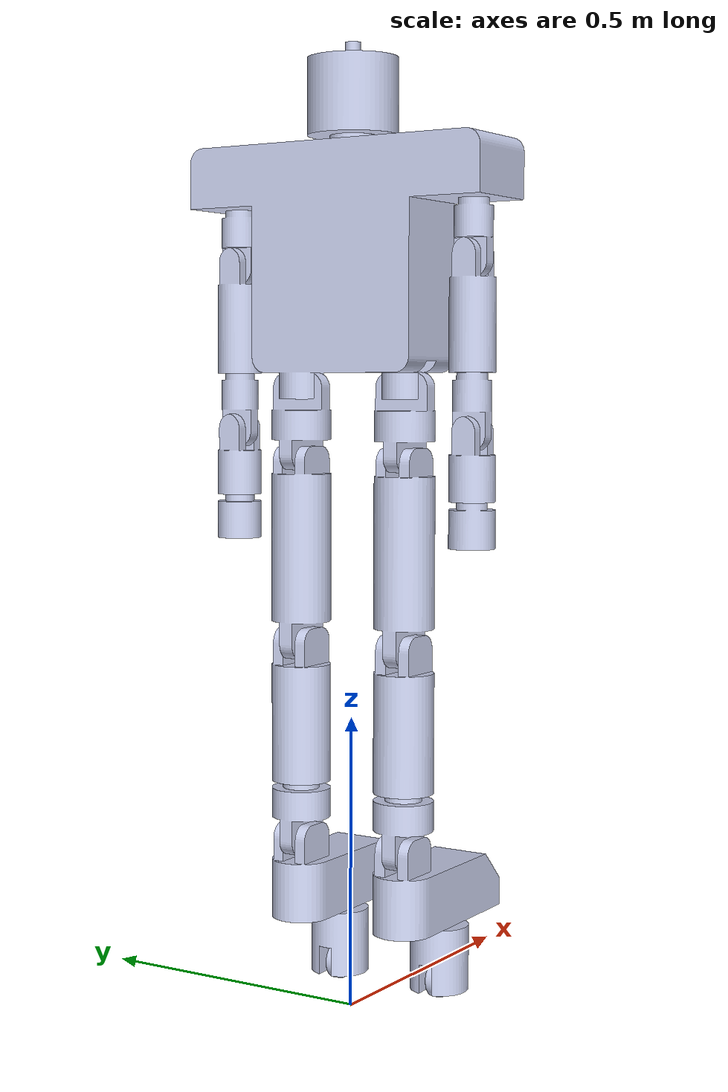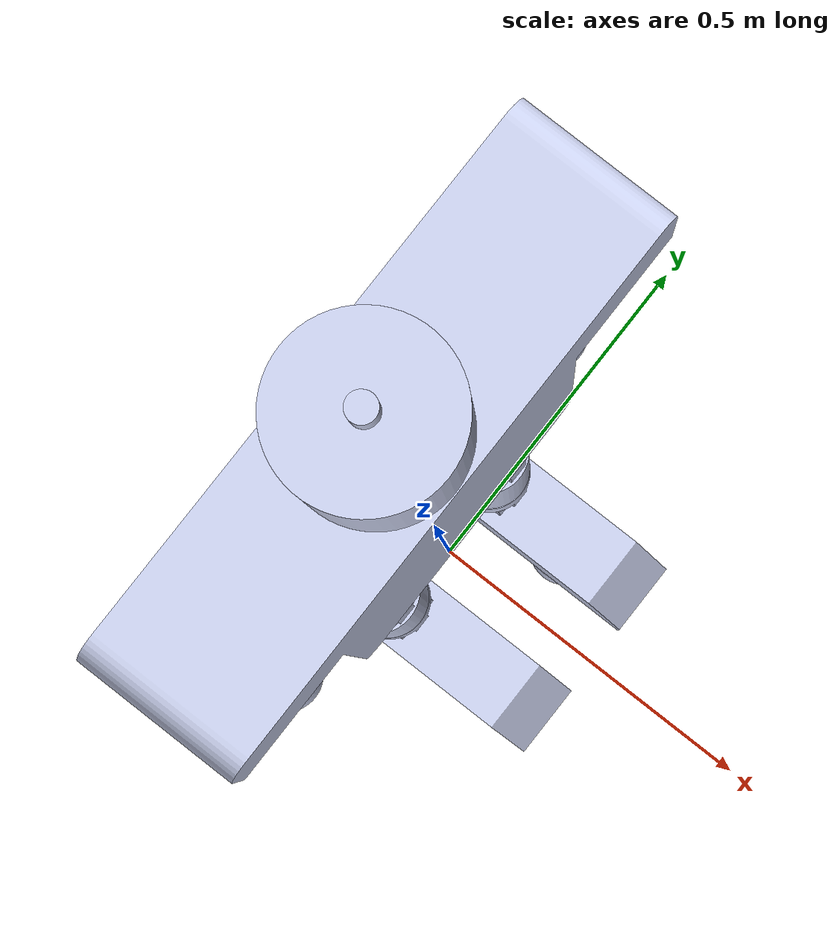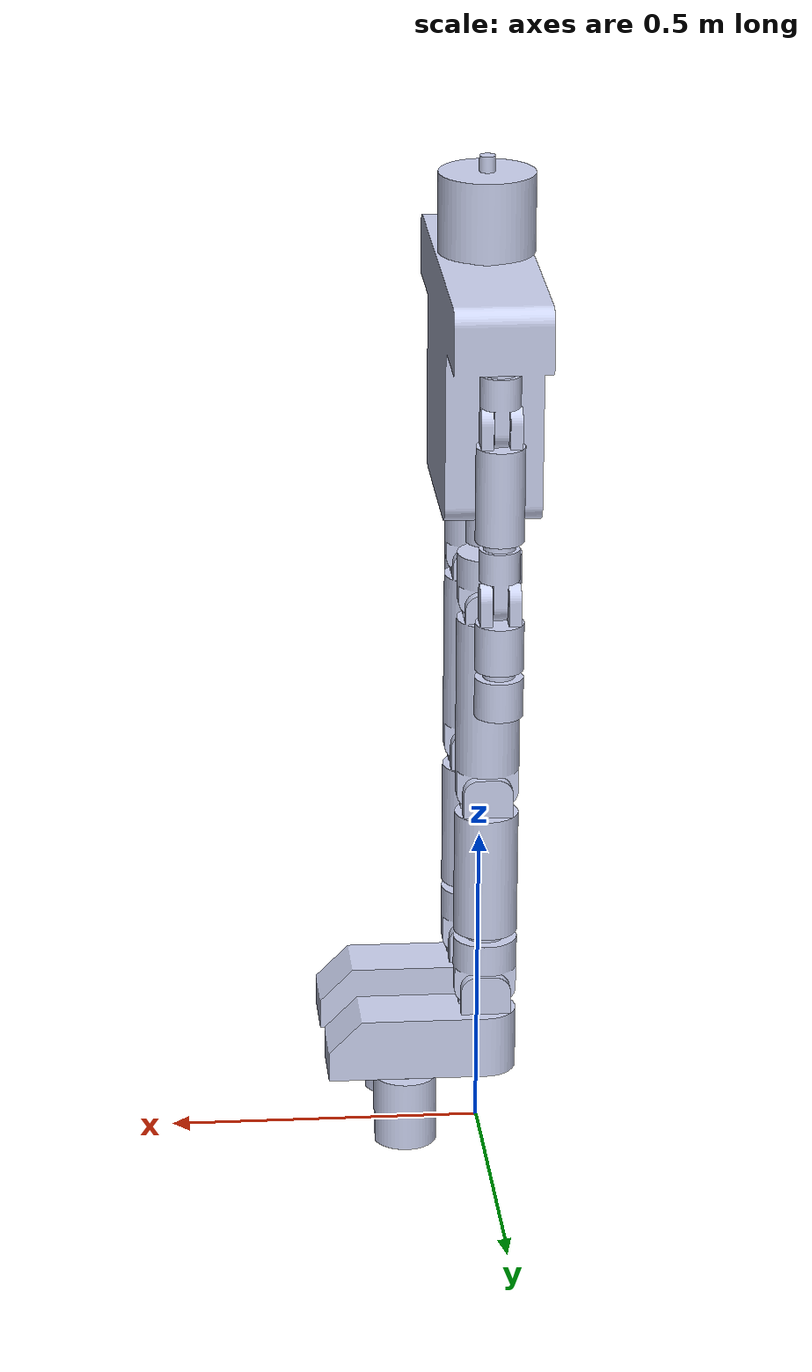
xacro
<?xml version="1.0" ?>

<robot
  name="humanoid" xmlns:xacro="http://ros.org/wiki/xacro">

  <!-- Dummy Link -->
  <link name="dummy_link"></link>

  <link
    name="base_link">
    <inertial>
      <origin
        xyz="3.8031E-15 1.512E-16 1.2984"
        rpy="0 0 0" />
      <mass
        value="21.211" />
      <inertia
        ixx="0.59044"
        ixy="9.5223E-16"
        ixz="-8.1947E-16"
        iyy="0.32027"
        iyz="-2.4854E-17"
        izz="0.35359" />
    </inertial>
    <visual>
      <origin
        xyz="0 0 0"
        rpy="0 0 0" />
      <geometry>
        <mesh
          filename="package://humanoid/meshes/base_link.STL" />
      </geometry>
      <material
        name="">
        <color
          rgba="0.79216 0.81961 0.93333 1" />
      </material>
    </visual>
    <collision>
      <origin
        xyz="0 0 0"
        rpy="0 0 0" />
      <geometry>
        <mesh
          filename="package://humanoid/meshes/base_link.STL" />
      </geometry>
    </collision>
  </link>

  <!-- Dummy Joint -->
  <joint name="dummy_joint" type="fixed">
    <origin rpy="0 0 0" xyz="0 0 0" />
    <parent link="dummy_link"/>
    <child link="base_link"/>
  </joint>

  <link
    name="hd_link">
    <inertial>
      <origin
        xyz="6.163E-33 -2.6872E-18 -0.010583"
        rpy="0 0 0" />
      <mass
        value="2.6062" />
      <inertia
        ixx="0.0090144"
        ixy="-5.6248E-36"
        ixz="1.8808E-34"
        iyy="0.0090144"
        iyz="-7.0394E-20"
        izz="0.006936" />
    </inertial>
    <visual>
      <origin
        xyz="0 0 0"
        rpy="0 0 0" />
      <geometry>
        <mesh
          filename="package://humanoid/meshes/hd_link.STL" />
      </geometry>
      <material
        name="">
        <color
          rgba="0.79216 0.81961 0.93333 1" />
      </material>
    </visual>
    <collision>
      <origin
        xyz="0 0 0"
        rpy="0 0 0" />
      <geometry>
        <mesh
          filename="package://humanoid/meshes/hd_link.STL" />
      </geometry>
    </collision>
  </link>
  <joint
    name="hd_joint"
    type="revolute">
    <origin
      xyz="0 0 1.5433"
      rpy="0 0 1.5708" />
    <parent
      link="base_link" />
    <child
      link="hd_link" />
    <axis
      xyz="0 0 1" />
    <limit
      lower="-1.5708"
      upper="1.5708"
      effort="0"
      velocity="0" />
  </joint>
  <link
    name="ldr_link">
    <inertial>
      <origin
        xyz="-6.163E-33 -5.8746E-19 0"
        rpy="0 0 0" />
      <mass
        value="0.01287" />
      <inertia
        ixx="1.2109E-06"
        ixy="3.729E-41"
        ixz="-3.8729E-39"
        iyy="1.2109E-06"
        iyz="-5.9247E-37"
        izz="1.0379E-06" />
    </inertial>
    <visual>
      <origin
        xyz="0 0 0"
        rpy="0 0 0" />
      <geometry>
        <mesh
          filename="package://humanoid/meshes/ldr_link.STL" />
      </geometry>
      <material
        name="">
        <color
          rgba="0.79216 0.81961 0.93333 1" />
      </material>
    </visual>
    <collision>
      <origin
        xyz="0 0 0"
        rpy="0 0 0" />
      <geometry>
        <mesh
          filename="package://humanoid/meshes/ldr_link.STL" />
      </geometry>
    </collision>
  </link>
  <joint
    name="ldr_joint"
    type="fixed">
    <origin
      xyz="0 0 0.0762"
      rpy="0 0 0" />
    <parent
      link="hd_link" />
    <child
      link="ldr_link" />
    <axis
      xyz="0 0 0" />
  </joint>
  <link
    name="r_shldr_1_link">
    <inertial>
      <origin
        xyz="-7.718E-06 -1.114E-18 -0.027669"
        rpy="0 0 0" />
      <mass
        value="0.35613" />
      <inertia
        ixx="0.00074567"
        ixy="-2.0209E-21"
        ixz="-1.8635E-07"
        iyy="0.00076353"
        iyz="-8.8871E-21"
        izz="0.00014594" />
    </inertial>
    <visual>
      <origin
        xyz="0 0 0"
        rpy="0 0 0" />
      <geometry>
        <mesh
          filename="package://humanoid/meshes/r_shldr_1_link.STL" />
      </geometry>
      <material
        name="">
        <color
          rgba="0.79216 0.81961 0.93333 1" />
      </material>
    </visual>
    <collision>
      <origin
        xyz="0 0 0"
        rpy="0 0 0" />
      <geometry>
        <mesh
          filename="package://humanoid/meshes/r_shldr_1_link.STL" />
      </geometry>
    </collision>
  </link>
  <joint
    name="r_shldr_1_joint"
    type="revolute">
    <origin
      xyz="0 -0.2286 1.3655"
      rpy="0 0 1.5708" />
    <parent
      link="base_link" />
    <child
      link="r_shldr_1_link" />
    <axis
      xyz="0 0 1" />
    <limit
      lower="-1.5708"
      upper="1.5708"
      effort="0"
      velocity="0" />
  </joint>
  <link
    name="r_shldr_2_link">
    <inertial>
      <origin
        xyz="1.9512E-14 -0.084667 -1.4962E-17"
        rpy="0 0 0" />
      <mass
        value="0.6963" />
      <inertia
        ixx="0.0021474"
        ixy="-7.5583E-20"
        ixz="4.6213E-21"
        iyy="0.00053267"
        iyz="-3.5916E-21"
        izz="0.0021116" />
    </inertial>
    <visual>
      <origin
        xyz="0 0 0"
        rpy="0 0 0" />
      <geometry>
        <mesh
          filename="package://humanoid/meshes/r_shldr_2_link.STL" />
      </geometry>
      <material
        name="">
        <color
          rgba="0.79216 0.81961 0.93333 1" />
      </material>
    </visual>
    <collision>
      <origin
        xyz="0 0 0"
        rpy="0 0 0" />
      <geometry>
        <mesh
          filename="package://humanoid/meshes/r_shldr_2_link.STL" />
      </geometry>
    </collision>
  </link>
  <joint
    name="r_shldr_2_joint"
    type="revolute">
    <origin
      xyz="0.00024399 0.0015837 -0.095467"
      rpy="1.5708 0 0" />
    <parent
      link="r_shldr_1_link" />
    <child
      link="r_shldr_2_link" />
    <axis
      xyz="0 0 1" />
    <limit
      lower="-1.5708"
      upper="1.5708"
      effort="0"
      velocity="0" />
  </joint>
  <link
    name="r_elb_1_link">
    <inertial>
      <origin
        xyz="7.718E-06 3.1442E-17 -0.027669"
        rpy="0 0 0" />
      <mass
        value="0.35613" />
      <inertia
        ixx="0.00074567"
        ixy="5.3388E-21"
        ixz="1.8635E-07"
        iyy="0.00076353"
        iyz="-2.4356E-20"
        izz="0.00014594" />
    </inertial>
    <visual>
      <origin
        xyz="0 0 0"
        rpy="0 0 0" />
      <geometry>
        <mesh
          filename="package://humanoid/meshes/r_elb_1_link.STL" />
      </geometry>
      <material
        name="">
        <color
          rgba="0.79216 0.81961 0.93333 1" />
      </material>
    </visual>
    <collision>
      <origin
        xyz="0 0 0"
        rpy="0 0 0" />
      <geometry>
        <mesh
          filename="package://humanoid/meshes/r_elb_1_link.STL" />
      </geometry>
    </collision>
  </link>
  <joint
    name="r_elb_1_joint"
    type="revolute">
    <origin
      xyz="0 -0.18415 0"
      rpy="-1.5708 0 0" />
    <parent
      link="r_shldr_2_link" />
    <child
      link="r_elb_1_link" />
    <axis
      xyz="0 0 1" />
    <limit
      lower="-1.5708"
      upper="1.5708"
      effort="0"
      velocity="0" />
  </joint>
  <link
    name="r_elb_2_link">
    <inertial>
      <origin
        xyz="5.5511E-17 -0.052122 3.8005E-18"
        rpy="0 0 0" />
      <mass
        value="0.3488" />
      <inertia
        ixx="0.00059507"
        ixy="4.3132E-20"
        ixz="-4.1359E-22"
        iyy="0.00028045"
        iyz="-1.3932E-20"
        izz="0.00055932" />
    </inertial>
    <visual>
      <origin
        xyz="0 0 0"
        rpy="0 0 0" />
      <geometry>
        <mesh
          filename="package://humanoid/meshes/r_elb_2_link.STL" />
      </geometry>
      <material
        name="">
        <color
          rgba="0.79216 0.81961 0.93333 1" />
      </material>
    </visual>
    <collision>
      <origin
        xyz="0 0 0"
        rpy="0 0 0" />
      <geometry>
        <mesh
          filename="package://humanoid/meshes/r_elb_2_link.STL" />
      </geometry>
    </collision>
  </link>
  <joint
    name="r_elb_2_joint"
    type="revolute">
    <origin
      xyz="-0.00024399 -0.0015837 -0.095467"
      rpy="1.5708 -1.5708 0" />
    <parent
      link="r_elb_1_link" />
    <child
      link="r_elb_2_link" />
    <axis
      xyz="0 0 1" />
    <limit
      lower="-1.5708"
      upper="-1.5708"
      effort="0"
      velocity="0" />
  </joint>
  <link
    name="r_wst_link">
    <inertial>
      <origin
        xyz="-5.5511E-17 -2.1696E-19 0.051891"
        rpy="0 0 0" />
      <mass
        value="0.41185" />
      <inertia
        ixx="0.00061222"
        ixy="-5.6874E-21"
        ixz="5.8139E-20"
        iyy="0.00061222"
        iyz="-3.9234E-20"
        izz="0.00024492" />
    </inertial>
    <visual>
      <origin
        xyz="0 0 0"
        rpy="0 0 0" />
      <geometry>
        <mesh
          filename="package://humanoid/meshes/r_wst_link.STL" />
      </geometry>
      <material
        name="">
        <color
          rgba="0.79216 0.81961 0.93333 1" />
      </material>
    </visual>
    <collision>
      <origin
        xyz="0 0 0"
        rpy="0 0 0" />
      <geometry>
        <mesh
          filename="package://humanoid/meshes/r_wst_link.STL" />
      </geometry>
    </collision>
  </link>
  <joint
    name="r_wst_joint"
    type="revolute">
    <origin
      xyz="0 -0.1905 0"
      rpy="-1.5708 0 0" />
    <parent
      link="r_elb_2_link" />
    <child
      link="r_wst_link" />
    <axis
      xyz="0 0 1" />
    <limit
      lower="-3.1416"
      upper="3.1416"
      effort="0"
      velocity="0" />
  </joint>
  <link
    name="l_shldr_1_link">
    <inertial>
      <origin
        xyz="-7.718E-06 -1.1543E-18 -0.027669"
        rpy="0 0 0" />
      <mass
        value="0.35613" />
      <inertia
        ixx="0.00074567"
        ixy="4.8799E-23"
        ixz="-1.8635E-07"
        iyy="0.00076353"
        iyz="-1.1038E-20"
        izz="0.00014594" />
    </inertial>
    <visual>
      <origin
        xyz="0 0 0"
        rpy="0 0 0" />
      <geometry>
        <mesh
          filename="package://humanoid/meshes/l_shldr_1_link.STL" />
      </geometry>
      <material
        name="">
        <color
          rgba="0.79216 0.81961 0.93333 1" />
      </material>
    </visual>
    <collision>
      <origin
        xyz="0 0 0"
        rpy="0 0 0" />
      <geometry>
        <mesh
          filename="package://humanoid/meshes/l_shldr_1_link.STL" />
      </geometry>
    </collision>
  </link>
  <joint
    name="l_shldr_1_joint"
    type="revolute">
    <origin
      xyz="0 0.2286 1.3655"
      rpy="0 0 1.5708" />
    <parent
      link="base_link" />
    <child
      link="l_shldr_1_link" />
    <axis
      xyz="0 0 1" />
    <limit
      lower="-1.5708"
      upper="1.5708"
      effort="0"
      velocity="0" />
  </joint>
  <link
    name="l_shldr_2_link">
    <inertial>
      <origin
        xyz="1.9151E-14 -0.084667 1.6263E-17"
        rpy="0 0 0" />
      <mass
        value="0.6963" />
      <inertia
        ixx="0.0021474"
        ixy="7.1655E-19"
        ixz="8.0873E-21"
        iyy="0.00053267"
        iyz="-1.4351E-20"
        izz="0.0021116" />
    </inertial>
    <visual>
      <origin
        xyz="0 0 0"
        rpy="0 0 0" />
      <geometry>
        <mesh
          filename="package://humanoid/meshes/l_shldr_2_link.STL" />
      </geometry>
      <material
        name="">
        <color
          rgba="0.79216 0.81961 0.93333 1" />
      </material>
    </visual>
    <collision>
      <origin
        xyz="0 0 0"
        rpy="0 0 0" />
      <geometry>
        <mesh
          filename="package://humanoid/meshes/l_shldr_2_link.STL" />
      </geometry>
    </collision>
  </link>
  <joint
    name="l_shldr_2_joint"
    type="revolute">
    <origin
      xyz="0.00024399 0.0015837 -0.095467"
      rpy="1.5708 0 0" />
    <parent
      link="l_shldr_1_link" />
    <child
      link="l_shldr_2_link" />
    <axis
      xyz="0 0 1" />
    <limit
      lower="-1.5708"
      upper="1.5708"
      effort="0"
      velocity="0" />
  </joint>
  <link
    name="l_elb_1_link">
    <inertial>
      <origin
        xyz="-7.718E-06 -1.6697E-17 -0.027669"
        rpy="0 0 0" />
      <mass
        value="0.35613" />
      <inertia
        ixx="0.00074567"
        ixy="-6.7096E-22"
        ixz="-1.8635E-07"
        iyy="0.00076353"
        iyz="-7.5275E-21"
        izz="0.00014594" />
    </inertial>
    <visual>
      <origin
        xyz="0 0 0"
        rpy="0 0 0" />
      <geometry>
        <mesh
          filename="package://humanoid/meshes/l_elb_1_link.STL" />
      </geometry>
      <material
        name="">
        <color
          rgba="0.79216 0.81961 0.93333 1" />
      </material>
    </visual>
    <collision>
      <origin
        xyz="0 0 0"
        rpy="0 0 0" />
      <geometry>
        <mesh
          filename="package://humanoid/meshes/l_elb_1_link.STL" />
      </geometry>
    </collision>
  </link>
  <joint
    name="l_elb_1_joint"
    type="revolute">
    <origin
      xyz="0 -0.18415 0"
      rpy="-1.5708 0 0" />
    <parent
      link="l_shldr_2_link" />
    <child
      link="l_elb_1_link" />
    <axis
      xyz="0 0 1" />
    <limit
      lower="-1.5708"
      upper="1.5708"
      effort="0"
      velocity="0" />
  </joint>
  <link
    name="l_elb_2_link">
    <inertial>
      <origin
        xyz="-2.7756E-17 -0.052122 0"
        rpy="0 0 0" />
      <mass
        value="0.3488" />
      <inertia
        ixx="0.00059507"
        ixy="-5.2112E-20"
        ixz="-1.6544E-21"
        iyy="0.00028045"
        iyz="3.0486E-21"
        izz="0.00055932" />
    </inertial>
    <visual>
      <origin
        xyz="0 0 0"
        rpy="0 0 0" />
      <geometry>
        <mesh
          filename="package://humanoid/meshes/l_elb_2_link.STL" />
      </geometry>
      <material
        name="">
        <color
          rgba="0.79216 0.81961 0.93333 1" />
      </material>
    </visual>
    <collision>
      <origin
        xyz="0 0 0"
        rpy="0 0 0" />
      <geometry>
        <mesh
          filename="package://humanoid/meshes/l_elb_2_link.STL" />
      </geometry>
    </collision>
  </link>
  <joint
    name="l_elb_2_joint"
    type="revolute">
    <origin
      xyz="0.00024399 0.0015837 -0.095467"
      rpy="1.5708 0 0" />
    <parent
      link="l_elb_1_link" />
    <child
      link="l_elb_2_link" />
    <axis
      xyz="0 0 1" />
    <limit
      lower="-1.5708"
      upper="1.5708"
      effort="0"
      velocity="0" />
  </joint>
  <link
    name="l_wst_link">
    <inertial>
      <origin
        xyz="5.5511E-17 8.6736E-19 0.051891"
        rpy="0 0 0" />
      <mass
        value="0.41185" />
      <inertia
        ixx="0.00061222"
        ixy="-3.8705E-21"
        ixz="5.4194E-20"
        iyy="0.00061222"
        iyz="3.9778E-20"
        izz="0.00024492" />
    </inertial>
    <visual>
      <origin
        xyz="0 0 0"
        rpy="0 0 0" />
      <geometry>
        <mesh
          filename="package://humanoid/meshes/l_wst_link.STL" />
      </geometry>
      <material
        name="">
        <color
          rgba="0.79216 0.81961 0.93333 1" />
      </material>
    </visual>
    <collision>
      <origin
        xyz="0 0 0"
        rpy="0 0 0" />
      <geometry>
        <mesh
          filename="package://humanoid/meshes/l_wst_link.STL" />
      </geometry>
    </collision>
  </link>
  <joint
    name="l_wst_joint"
    type="revolute">
    <origin
      xyz="0 -0.1905 0"
      rpy="-1.5708 0 0" />
    <parent
      link="l_elb_2_link" />
    <child
      link="l_wst_link" />
    <axis
      xyz="0 0 1" />
    <limit
      lower="-3.1416"
      upper="3.1416"
      effort="0"
      velocity="0" />
  </joint>
  <link
    name="r_hp_1_link">
    <inertial>
      <origin
        xyz="0.00024877 -0.053648 0.000127"
        rpy="0 0 0" />
      <mass
        value="0.65765" />
      <inertia
        ixx="0.0012068"
        ixy="-1.6847E-07"
        ixz="-6.4984E-21"
        iyy="0.00074697"
        iyz="-3.7908E-20"
        izz="0.0012307" />
    </inertial>
    <visual>
      <origin
        xyz="0 0 0"
        rpy="0 0 0" />
      <geometry>
        <mesh
          filename="package://humanoid/meshes/r_hp_1_link.STL" />
      </geometry>
      <material
        name="">
        <color
          rgba="0.79216 0.81961 0.93333 1" />
      </material>
    </visual>
    <collision>
      <origin
        xyz="0 0 0"
        rpy="0 0 0" />
      <geometry>
        <mesh
          filename="package://humanoid/meshes/r_hp_1_link.STL" />
      </geometry>
    </collision>
  </link>
  <joint
    name="r_hp_1_joint"
    type="revolute">
    <origin
      xyz="0 -0.1022 1.0549"
      rpy="1.5708 0 1.5708" />
    <parent
      link="base_link" />
    <child
      link="r_hp_1_link" />
    <axis
      xyz="0 0 1" />
    <limit
      lower="-1.5708"
      upper="1.5708"
      effort="0"
      velocity="0" />
  </joint>
  <link
    name="r_hp_2_link">
    <inertial>
      <origin
        xyz="1.0766E-16 -0.16129 -2.2204E-16"
        rpy="0 0 0" />
      <mass
        value="2.3091" />
      <inertia
        ixx="0.018755"
        ixy="2.2914E-19"
        ixz="-6.1207E-21"
        iyy="0.0028914"
        iyz="2.5905E-18"
        izz="0.018839" />
    </inertial>
    <visual>
      <origin
        xyz="0 0 0"
        rpy="0 0 0" />
      <geometry>
        <mesh
          filename="package://humanoid/meshes/r_hp_2_link.STL" />
      </geometry>
      <material
        name="">
        <color
          rgba="0.79216 0.81961 0.93333 1" />
      </material>
    </visual>
    <collision>
      <origin
        xyz="0 0 0"
        rpy="0 0 0" />
      <geometry>
        <mesh
          filename="package://humanoid/meshes/r_hp_2_link.STL" />
      </geometry>
    </collision>
  </link>
  <joint
    name="r_hp_2_joint"
    type="revolute">
    <origin
      xyz="0.00024399 -0.10817 0.000127"
      rpy="0 1.5708 0" />
    <parent
      link="r_hp_1_link" />
    <child
      link="r_hp_2_link" />
    <axis
      xyz="0 0 1" />
    <limit
      lower="-1.5708"
      upper="1.5708"
      effort="0"
      velocity="0" />
  </joint>
  <link
    name="r_kn_link">
    <inertial>
      <origin
        xyz="-4.8765E-16 -0.12013 -1.1616E-14"
        rpy="0 0 0" />
      <mass
        value="1.6405" />
      <inertia
        ixx="0.0082386"
        ixy="-3.646E-20"
        ixz="6.8971E-21"
        iyy="0.0022087"
        iyz="4.4528E-20"
        izz="0.0082315" />
    </inertial>
    <visual>
      <origin
        xyz="0 0 0"
        rpy="0 0 0" />
      <geometry>
        <mesh
          filename="package://humanoid/meshes/r_kn_link.STL" />
      </geometry>
      <material
        name="">
        <color
          rgba="0.79216 0.81961 0.93333 1" />
      </material>
    </visual>
    <collision>
      <origin
        xyz="0 0 0"
        rpy="0 0 0" />
      <geometry>
        <mesh
          filename="package://humanoid/meshes/r_kn_link.STL" />
      </geometry>
    </collision>
  </link>
  <joint
    name="r_kn_joint"
    type="revolute">
    <origin
      xyz="0 -0.31824 0"
      rpy="0 0 0" />
    <parent
      link="r_hp_2_link" />
    <child
      link="r_kn_link" />
    <axis
      xyz="0 0 1" />
    <limit
      lower="0"
      upper="1.5708"
      effort="0"
      velocity="0" />
  </joint>
  <link
    name="r_ank_1_link">
    <inertial>
      <origin
        xyz="0 -3.9653E-06 -0.028529"
        rpy="0 0 0" />
      <mass
        value="0.79193" />
      <inertia
        ixx="0.0020261"
        ixy="1.4945E-20"
        ixz="-1.3416E-19"
        iyy="0.0019196"
        iyz="-2.102E-07"
        izz="0.00077447" />
    </inertial>
    <visual>
      <origin
        xyz="0 0 0"
        rpy="0 0 0" />
      <geometry>
        <mesh
          filename="package://humanoid/meshes/r_ank_1_link.STL" />
      </geometry>
      <material
        name="">
        <color
          rgba="0.79216 0.81961 0.93333 1" />
      </material>
    </visual>
    <collision>
      <origin
        xyz="0 0 0"
        rpy="0 0 0" />
      <geometry>
        <mesh
          filename="package://humanoid/meshes/r_ank_1_link.STL" />
      </geometry>
    </collision>
  </link>
  <joint
    name="r_ank_1_joint"
    type="revolute">
    <origin
      xyz="0 -0.24599 0"
      rpy="1.5708 -1.5708 3.1416" />
    <parent
      link="r_kn_link" />
    <child
      link="r_ank_1_link" />
    <axis
      xyz="0 0 1" />
    <limit
      lower="-1.5708"
      upper="1.5708"
      effort="0"
      velocity="0" />
  </joint>
  <link
    name="r_ank_2_link">
    <inertial>
      <origin
        xyz="-0.091402 -0.087623 -2.7756E-17"
        rpy="0 0 0" />
      <mass
        value="2.8526" />
      <inertia
        ixx="0.0058988"
        ixy="-0.0019208"
        ixz="-1.9762E-18"
        iyy="0.023453"
        iyz="1.9261E-19"
        izz="0.024534" />
    </inertial>
    <visual>
      <origin
        xyz="0 0 0"
        rpy="0 0 0" />
      <geometry>
        <mesh
          filename="package://humanoid/meshes/r_ank_2_link.STL" />
      </geometry>
      <material
        name="">
        <color
          rgba="0.79216 0.81961 0.93333 1" />
      </material>
    </visual>
    <collision>
      <origin
        xyz="0 0 0"
        rpy="0 0 0" />
      <geometry>
        <mesh
          filename="package://humanoid/meshes/r_ank_2_link.STL" />
      </geometry>
    </collision>
  </link>
  <joint
    name="r_ank_2_joint"
    type="revolute">
    <origin
      xyz="0 0.00024399 -0.095467"
      rpy="1.5708 0 1.5708" />
    <parent
      link="r_ank_1_link" />
    <child
      link="r_ank_2_link" />
    <axis
      xyz="0 0 1" />
    <limit
      lower="-0.7854"
      upper="0.7854"
      effort="0"
      velocity="0" />
  </joint>
  <link
    name="r_str_link">
    <inertial>
      <origin
        xyz="0 0 -0.05324"
        rpy="0 0 0" />
      <mass
        value="0.92887" />
      <inertia
        ixx="0.0021692"
        ixy="2.6933E-20"
        ixz="-2.5171E-20"
        iyy="0.0022717"
        iyz="-9.47E-21"
        izz="0.0011212" />
    </inertial>
    <visual>
      <origin
        xyz="0 0 0"
        rpy="0 0 0" />
      <geometry>
        <mesh
          filename="package://humanoid/meshes/r_str_link.STL" />
      </geometry>
      <material
        name="">
        <color
          rgba="0.79216 0.81961 0.93333 1" />
      </material>
    </visual>
    <collision>
      <origin
        xyz="0 0 0"
        rpy="0 0 0" />
      <geometry>
        <mesh
          filename="package://humanoid/meshes/r_str_link.STL" />
      </geometry>
    </collision>
  </link>
  <joint
    name="r_str_joint"
    type="revolute">
    <origin
      xyz="-0.127 -0.14439 0"
      rpy="1.5708 -1.5708 3.1416" />
    <parent
      link="r_ank_2_link" />
    <child
      link="r_str_link" />
    <axis
      xyz="0 0 1" />
    <limit
      lower="-3.1416"
      upper="3.1416"
      effort="0"
      velocity="0" />
  </joint>
  <link
    name="r_wl_link">
    <inertial>
      <origin
        xyz="0 0 -1.3878E-17"
        rpy="0 0 0" />
      <mass
        value="0.064271" />
      <inertia
        ixx="2.1439E-05"
        ixy="-2.5021E-38"
        ixz="1.6141E-22"
        iyy="2.1439E-05"
        iyz="3.8564E-22"
        izz="3.6458E-05" />
    </inertial>
    <visual>
      <origin
        xyz="0 0 0"
        rpy="0 0 0" />
      <geometry>
        <mesh
          filename="package://humanoid/meshes/r_wl_link.STL" />
      </geometry>
      <material
        name="">
        <color
          rgba="0.79216 0.81961 0.93333 1" />
      </material>
    </visual>
    <collision>
      <origin
        xyz="0 0 0"
        rpy="0 0 0" />
      <geometry>
        <mesh
          filename="package://humanoid/meshes/r_wl_link.STL" />
      </geometry>
    </collision>
  </link>
  <joint
    name="r_wl_joint"
    type="revolute">
    <origin
      xyz="0 0 -0.11092"
      rpy="1.5708 0 1.5708" />
    <parent
      link="r_str_link" />
    <child
      link="r_wl_link" />
    <axis
      xyz="0 0 1" />
    <limit
      lower="-3.1416"
      upper="3.1416"
      effort="0"
      velocity="0" />
  </joint>
  <link
    name="l_hp_1_link">
    <inertial>
      <origin
        xyz="0.00024877 -0.053648 0.000127"
        rpy="0 0 0" />
      <mass
        value="0.65765" />
      <inertia
        ixx="0.0012068"
        ixy="-1.6847E-07"
        ixz="3.8204E-21"
        iyy="0.00074697"
        iyz="-2.6622E-19"
        izz="0.0012307" />
    </inertial>
    <visual>
      <origin
        xyz="0 0 0"
        rpy="0 0 0" />
      <geometry>
        <mesh
          filename="package://humanoid/meshes/l_hp_1_link.STL" />
      </geometry>
      <material
        name="">
        <color
          rgba="0.79216 0.81961 0.93333 1" />
      </material>
    </visual>
    <collision>
      <origin
        xyz="0 0 0"
        rpy="0 0 0" />
      <geometry>
        <mesh
          filename="package://humanoid/meshes/l_hp_1_link.STL" />
      </geometry>
    </collision>
  </link>
  <joint
    name="l_hp_1_joint"
    type="revolute">
    <origin
      xyz="0 0.1022 1.0549"
      rpy="1.5708 0 1.5708" />
    <parent
      link="base_link" />
    <child
      link="l_hp_1_link" />
    <axis
      xyz="0 0 1" />
    <limit
      lower="-1.5708"
      upper="1.5708"
      effort="0"
      velocity="0" />
  </joint>
  <link
    name="l_hp_2_link">
    <inertial>
      <origin
        xyz="-1.3553E-17 -0.16129 8.0769E-15"
        rpy="0 0 0" />
      <mass
        value="2.3091" />
      <inertia
        ixx="0.018755"
        ixy="9.5821E-20"
        ixz="-1.5705E-20"
        iyy="0.0028914"
        iyz="-1.1135E-16"
        izz="0.018839" />
    </inertial>
    <visual>
      <origin
        xyz="0 0 0"
        rpy="0 0 0" />
      <geometry>
        <mesh
          filename="package://humanoid/meshes/l_hp_2_link.STL" />
      </geometry>
      <material
        name="">
        <color
          rgba="0.79216 0.81961 0.93333 1" />
      </material>
    </visual>
    <collision>
      <origin
        xyz="0 0 0"
        rpy="0 0 0" />
      <geometry>
        <mesh
          filename="package://humanoid/meshes/l_hp_2_link.STL" />
      </geometry>
    </collision>
  </link>
  <joint
    name="l_hp_2_joint"
    type="revolute">
    <origin
      xyz="0.00024399 -0.10817 0.000127"
      rpy="0 1.5708 0" />
    <parent
      link="l_hp_1_link" />
    <child
      link="l_hp_2_link" />
    <axis
      xyz="0 0 1" />
    <limit
      lower="-1.5708"
      upper="1.5708"
      effort="0"
      velocity="0" />
  </joint>
  <link
    name="l_kn_link">
    <inertial>
      <origin
        xyz="-1.1867E-16 -0.12013 4.1633E-17"
        rpy="0 0 0" />
      <mass
        value="1.6405" />
      <inertia
        ixx="0.0082386"
        ixy="-9.2755E-21"
        ixz="1.8323E-20"
        iyy="0.0022087"
        iyz="4.895E-19"
        izz="0.0082315" />
    </inertial>
    <visual>
      <origin
        xyz="0 0 0"
        rpy="0 0 0" />
      <geometry>
        <mesh
          filename="package://humanoid/meshes/l_kn_link.STL" />
      </geometry>
      <material
        name="">
        <color
          rgba="0.79216 0.81961 0.93333 1" />
      </material>
    </visual>
    <collision>
      <origin
        xyz="0 0 0"
        rpy="0 0 0" />
      <geometry>
        <mesh
          filename="package://humanoid/meshes/l_kn_link.STL" />
      </geometry>
    </collision>
  </link>
  <joint
    name="l_kn_joint"
    type="revolute">
    <origin
      xyz="0 -0.31824 0"
      rpy="0 0 0" />
    <parent
      link="l_hp_2_link" />
    <child
      link="l_kn_link" />
    <axis
      xyz="0 0 1" />
    <limit
      lower="0"
      upper="1.5708"
      effort="0"
      velocity="0" />
  </joint>
  <link
    name="l_ank_1_link">
    <inertial>
      <origin
        xyz="0 3.9653E-06 -0.028529"
        rpy="0 0 0" />
      <mass
        value="0.79193" />
      <inertia
        ixx="0.0020261"
        ixy="2.5897E-21"
        ixz="1.3284E-20"
        iyy="0.0019196"
        iyz="2.102E-07"
        izz="0.00077447" />
    </inertial>
    <visual>
      <origin
        xyz="0 0 0"
        rpy="0 0 0" />
      <geometry>
        <mesh
          filename="package://humanoid/meshes/l_ank_1_link.STL" />
      </geometry>
      <material
        name="">
        <color
          rgba="0.79216 0.81961 0.93333 1" />
      </material>
    </visual>
    <collision>
      <origin
        xyz="0 0 0"
        rpy="0 0 0" />
      <geometry>
        <mesh
          filename="package://humanoid/meshes/l_ank_1_link.STL" />
      </geometry>
    </collision>
  </link>
  <joint
    name="l_ank_1_joint"
    type="revolute">
    <origin
      xyz="0 -0.24599 0"
      rpy="1.5708 -1.5708 3.1416" />
    <parent
      link="l_kn_link" />
    <child
      link="l_ank_1_link" />
    <axis
      xyz="0 0 1" />
    <limit
      lower="-1.5708"
      upper="1.5708"
      effort="0"
      velocity="0" />
  </joint>
  <link
    name="l_ank_2_link">
    <inertial>
      <origin
        xyz="-0.091402 -0.087623 -2.276E-15"
        rpy="0 0 0" />
      <mass
        value="2.8526" />
      <inertia
        ixx="0.0058988"
        ixy="-0.0019208"
        ixz="2.2866E-19"
        iyy="0.023453"
        iyz="4.7738E-19"
        izz="0.024534" />
    </inertial>
    <visual>
      <origin
        xyz="0 0 0"
        rpy="0 0 0" />
      <geometry>
        <mesh
          filename="package://humanoid/meshes/l_ank_2_link.STL" />
      </geometry>
      <material
        name="">
        <color
          rgba="0.79216 0.81961 0.93333 1" />
      </material>
    </visual>
    <collision>
      <origin
        xyz="0 0 0"
        rpy="0 0 0" />
      <geometry>
        <mesh
          filename="package://humanoid/meshes/l_ank_2_link.STL" />
      </geometry>
    </collision>
  </link>
  <joint
    name="l_ank_2_joint"
    type="revolute">
    <origin
      xyz="0 -0.00024399 -0.095467"
      rpy="1.5708 0 1.5708" />
    <parent
      link="l_ank_1_link" />
    <child
      link="l_ank_2_link" />
    <axis
      xyz="0 0 1" />
    <limit
      lower="-0.7854"
      upper="0.7854"
      effort="0"
      velocity="0" />
  </joint>
  <link
    name="l_str_link">
    <inertial>
      <origin
        xyz="0 0 -0.05324"
        rpy="0 0 0" />
      <mass
        value="0.92887" />
      <inertia
        ixx="0.0021692"
        ixy="1.0072E-20"
        ixz="-2.7816E-20"
        iyy="0.0022717"
        iyz="-1.2466E-20"
        izz="0.0011212" />
    </inertial>
    <visual>
      <origin
        xyz="0 0 0"
        rpy="0 0 0" />
      <geometry>
        <mesh
          filename="package://humanoid/meshes/l_str_link.STL" />
      </geometry>
      <material
        name="">
        <color
          rgba="0.79216 0.81961 0.93333 1" />
      </material>
    </visual>
    <collision>
      <origin
        xyz="0 0 0"
        rpy="0 0 0" />
      <geometry>
        <mesh
          filename="package://humanoid/meshes/l_str_link.STL" />
      </geometry>
    </collision>
  </link>
  <joint
    name="l_str_joint"
    type="revolute">
    <origin
      xyz="-0.127 -0.14439 0"
      rpy="1.5708 -1.5708 3.1416" />
    <parent
      link="l_ank_2_link" />
    <child
      link="l_str_link" />
    <axis
      xyz="0 0 1" />
    <limit
      lower="-3.1416"
      upper="3.1416"
      effort="0"
      velocity="0" />
  </joint>
  <link
    name="l_wl_link">
    <inertial>
      <origin
        xyz="-2.7756E-17 0 0"
        rpy="0 0 0" />
      <mass
        value="0.064271" />
      <inertia
        ixx="2.1439E-05"
        ixy="-1.3576E-36"
        ixz="2.4451E-22"
        iyy="2.1439E-05"
        iyz="-8.9033E-22"
        izz="3.6458E-05" />
    </inertial>
    <visual>
      <origin
        xyz="0 0 0"
        rpy="0 0 0" />
      <geometry>
        <mesh
          filename="package://humanoid/meshes/l_wl_link.STL" />
      </geometry>
      <material
        name="">
        <color
          rgba="0.79216 0.81961 0.93333 1" />
      </material>
    </visual>
    <collision>
      <origin
        xyz="0 0 0"
        rpy="0 0 0" />
      <geometry>
        <mesh
          filename="package://humanoid/meshes/l_wl_link.STL" />
      </geometry>
    </collision>
  </link>
  <joint
    name="l_wl_joint"
    type="revolute">
    <origin
      xyz="0 0 -0.11092"
      rpy="1.5708 0 1.5708" />
    <parent
      link="l_str_link" />
    <child
      link="l_wl_link" />
    <axis
      xyz="0 0 1" />
    <limit
      lower="-3.1416"
      upper="3.1416"
      effort="0"
      velocity="0" />
  </joint>

  <!-- Controller Plugin -->
  <ros2_control name="GazeboSystem" type="system">
    <hardware>
        <plugin>gazebo_ros2_control/GazeboSystem</plugin>
    </hardware>

    <!-- Position Controller -->
    <joint name="hd_joint">
        <command_interface name="position">
            <param name="min">-1.5708</param>
            <param name="max">1.5708</param>
        </command_interface>
        <state_interface name="position"/>
    </joint>

    <joint name="r_shldr_1_joint">
        <command_interface name="position">
            <param name="min">-1.5708</param>
            <param name="max">1.5708</param>
        </command_interface>
        <state_interface name="position"/>
    </joint>

    <joint name="r_shldr_2_joint">
        <command_interface name="position">
            <param name="min">-1.5708</param>
            <param name="max">1.5708</param>
        </command_interface>
        <state_interface name="position"/>
    </joint>

    <joint name="r_elb_1_joint">
        <command_interface name="position">
            <param name="min">-1.5708</param>
            <param name="max">1.5708</param>
        </command_interface>
        <state_interface name="position"/>
    </joint>

    <joint name="r_elb_2_joint">
        <command_interface name="position">
            <param name="min">-1.5708</param>
            <param name="max">1.5708</param>
        </command_interface>
        <state_interface name="position"/>
    </joint>

    <joint name="r_wst_joint">
        <command_interface name="position">
            <param name="min">-3.1416</param>
            <param name="max">3.1416</param>
        </command_interface>
        <state_interface name="position"/>
    </joint>

    <joint name="l_shldr_1_joint">
        <command_interface name="position">
            <param name="min">-1.5708</param>
            <param name="max">1.5708</param>
        </command_interface>
        <state_interface name="position"/>
    </joint>

    <joint name="l_shldr_2_joint">
        <command_interface name="position">
            <param name="min">-1.5708</param>
            <param name="max">1.5708</param>
        </command_interface>
        <state_interface name="position"/>
    </joint>

    <joint name="l_elb_1_joint">
        <command_interface name="position">
            <param name="min">-1.5708</param>
            <param name="max">1.5708</param>
        </command_interface>
        <state_interface name="position"/>
    </joint>

    <joint name="l_elb_2_joint">
        <command_interface name="position">
            <param name="min">-1.5708</param>
            <param name="max">1.5708</param>
        </command_interface>
        <state_interface name="position"/>
    </joint>

    <joint name="l_wst_joint">
        <command_interface name="position">
            <param name="min">-3.1416</param>
            <param name="max">3.1416</param>
        </command_interface>
        <state_interface name="position"/>
    </joint>

    <joint name="r_hp_1_joint">
        <command_interface name="position">
            <param name="min">-1.5708</param>
            <param name="max">1.5708</param>
        </command_interface>
        <state_interface name="position"/>
    </joint>

    <joint name="r_hp_2_joint">
        <command_interface name="position">
            <param name="min">-1.5708</param>
            <param name="max">1.5708</param>
        </command_interface>
        <state_interface name="position"/>
    </joint>

    <joint name="r_kn_joint">
        <command_interface name="position">
            <param name="min">0.0</param>
            <param name="max">1.5708</param>
        </command_interface>
        <state_interface name="position"/>
    </joint>

    <joint name="r_ank_1_joint">
        <command_interface name="position">
            <param name="min">-1.5708</param>
            <param name="max">1.5708</param>
        </command_interface>
        <state_interface name="position"/>
    </joint>

    <joint name="r_ank_2_joint">
        <command_interface name="position">
            <param name="min">-0.7854</param>
            <param name="max">0.7854</param>
        </command_interface>
        <state_interface name="position"/>
    </joint>

    <joint name="r_str_joint">
        <command_interface name="position">
            <param name="min">-3.1416</param>
            <param name="max">3.1416</param>
        </command_interface>
        <state_interface name="position"/>
    </joint>

    <joint name="r_wl_joint">
        <command_interface name="position">
            <param name="min">-3.1416</param>
            <param name="max">3.1416</param>
        </command_interface>
        <state_interface name="position"/>
    </joint>

    <joint name="l_hp_1_joint">
        <command_interface name="position">
            <param name="min">-1.5708</param>
            <param name="max">1.5708</param>
        </command_interface>
        <state_interface name="position"/>
    </joint>

    <joint name="l_hp_2_joint">
        <command_interface name="position">
            <param name="min">-1.5708</param>
            <param name="max">1.5708</param>
        </command_interface>
        <state_interface name="position"/>
    </joint>

    <joint name="l_kn_joint">
        <command_interface name="position">
            <param name="min">0.0</param>
            <param name="max">1.5708</param>
        </command_interface>
        <state_interface name="position"/>
    </joint>

    <joint name="l_ank_1_joint">
        <command_interface name="position">
            <param name="min">-1.5708</param>
            <param name="max">1.5708</param>
        </command_interface>
        <state_interface name="position"/>
    </joint>

    <joint name="l_ank_2_joint">
        <command_interface name="position">
            <param name="min">-0.7854</param>
            <param name="max">0.7854</param>
        </command_interface>
        <state_interface name="position"/>
    </joint>

    <joint name="l_str_joint">
        <command_interface name="position">
            <param name="min">-3.1416</param>
            <param name="max">3.1416</param>
        </command_interface>
        <state_interface name="position"/>
    </joint>

    <joint name="l_wl_joint">
        <command_interface name="position">
            <param name="min">-3.1416</param>
            <param name="max">3.1416</param>
        </command_interface>
        <state_interface name="position"/>
    </joint>

 </ros2_control>

  <gazebo>
    <plugin filename="libgazebo_ros2_control.so" name="gazebo_ros2_control">
      <parameters>$(find humanoid)/config/control.yaml</parameters>
    </plugin>
  </gazebo>

  <!-- LiDAR Plugin -->
  <gazebo reference="ldr_link">
  <sensor name="lidar" type="ray">
    <pose>0.0 0.0 0.0 0 0 0</pose>
    <always_on>true</always_on>
    <visualize>true</visualize>
    <update_rate>5</update_rate>
    <ray>
      <scan>
        <horizontal>
          <samples>360</samples>
          <resolution>1.00000</resolution>
          <min_angle>0.000000</min_angle>
          <max_angle>6.280000</max_angle>
        </horizontal>
      </scan>
      <range>
        <min>0.120000</min>
        <max>3.5</max>
        <resolution>0.015000</resolution>
      </range>
      <noise>
        <type>gaussian</type>
        <mean>0.0</mean>
        <stddev>0.01</stddev>
      </noise>
    </ray>
    <plugin name="scan_1" filename="libgazebo_ros_ray_sensor.so">
      <ros>
        <remapping>~/out:=scan</remapping>
      </ros>
      <output_type>sensor_msgs/LaserScan</output_type>
      <frame_name>ldr_link</frame_name>
    </plugin>
  </sensor>
  </gazebo>

</robot>
